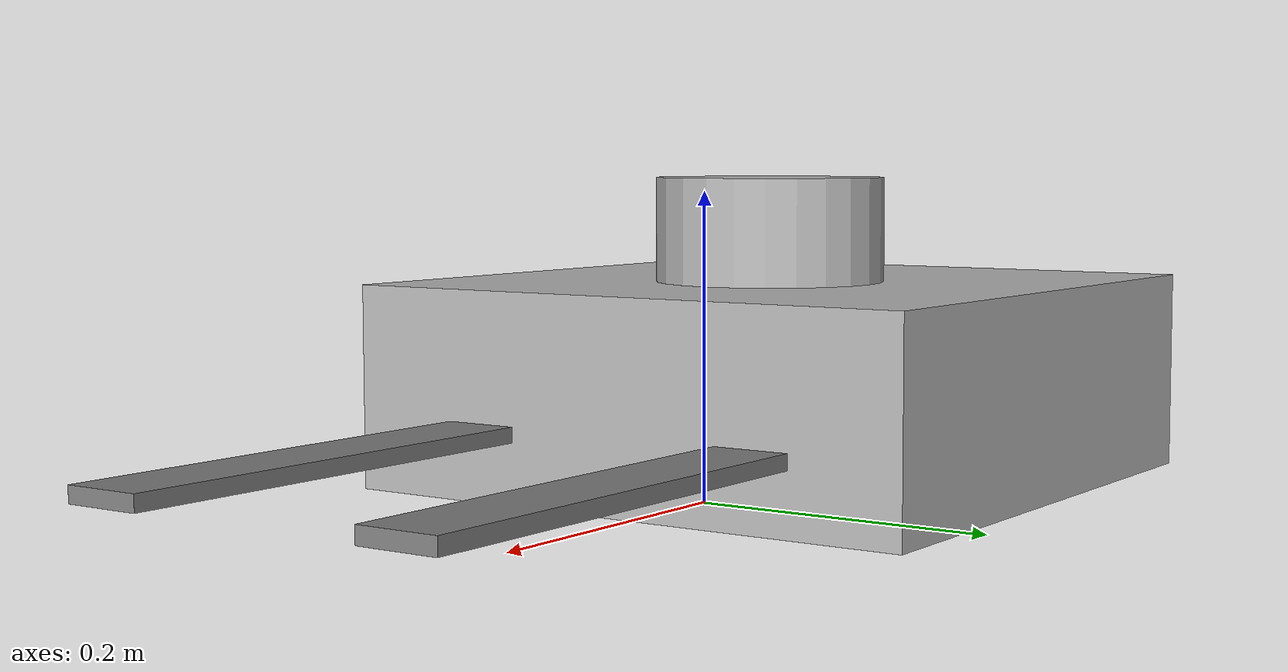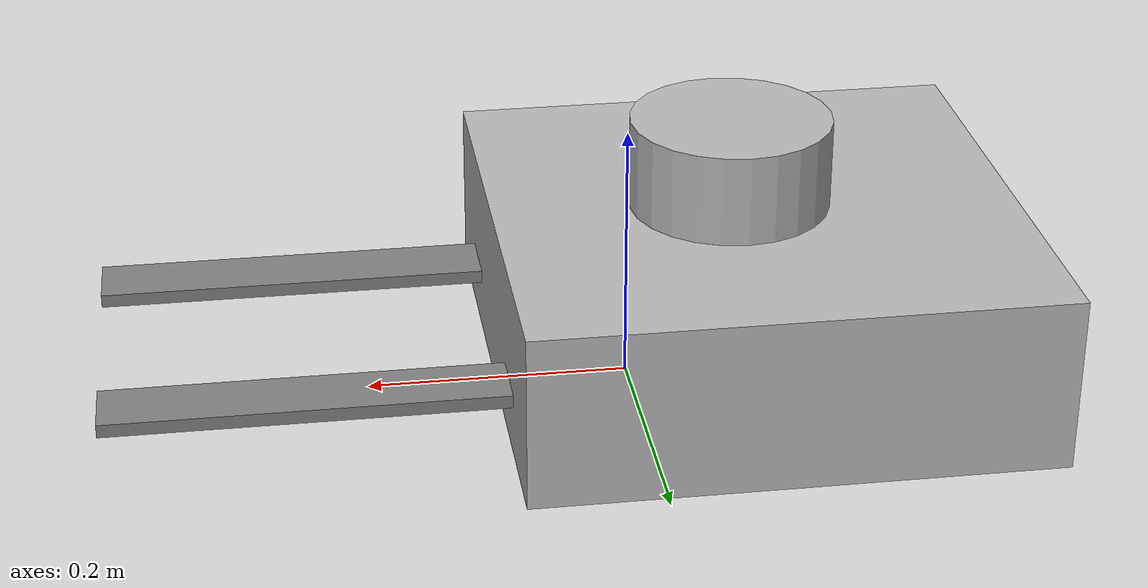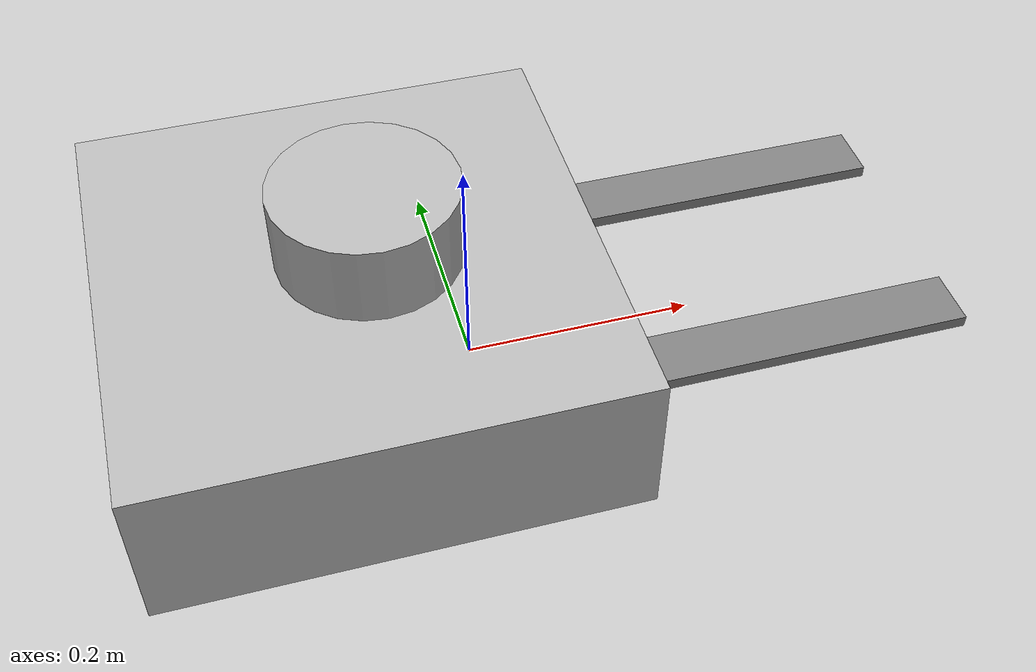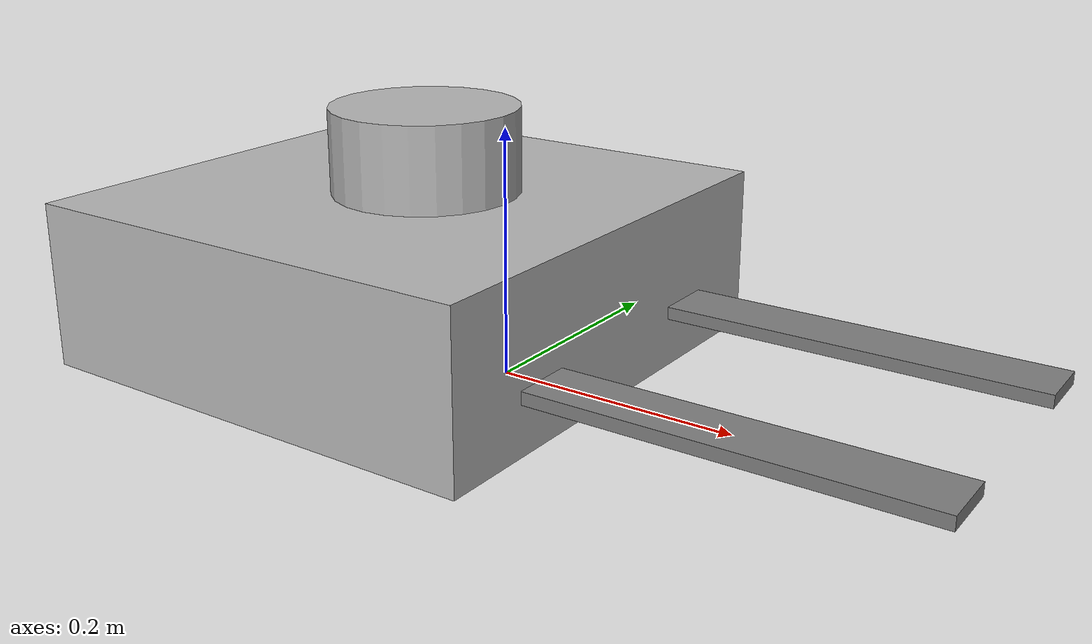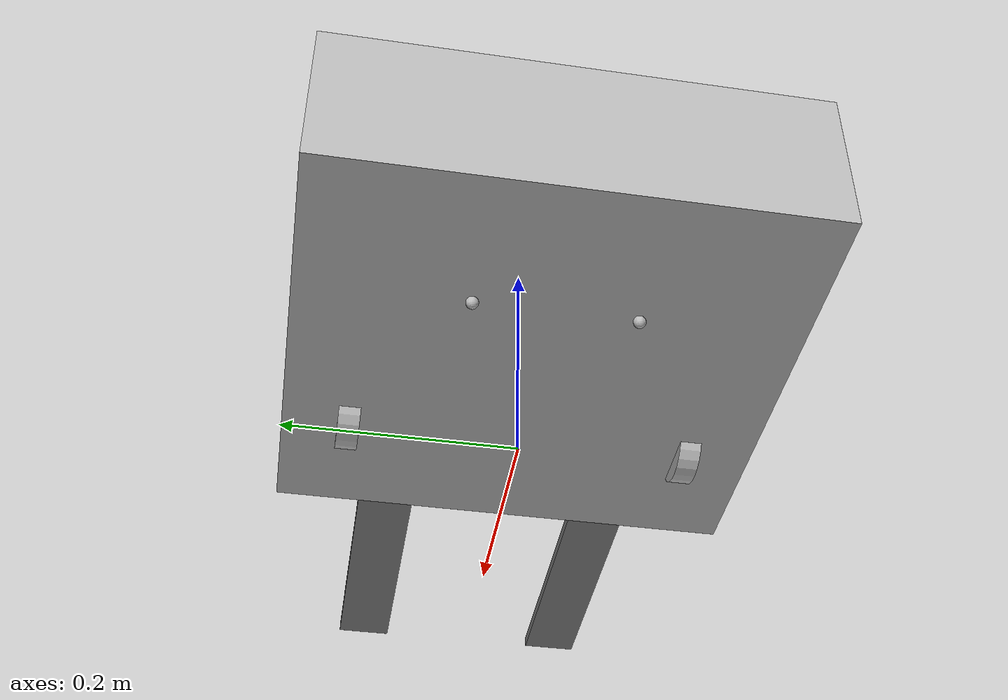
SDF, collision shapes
<?xml version="1.0" ?>
<sdf version="1.6">
  <model name="turtlebot3_waffle">
  <pose>0.0 0.0 0.0 0.0 0.0 0.0</pose>

    <link name="base_footprint"/>

    <link name="base_link">

      <inertial>
        <pose>-0.096 0 0.072 0 0 0</pose> <!-- Scaled by 1.5 -->
        <inertia>
          <ixx>9.4740756e-02</ixx> <!-- Scaled by 1.5^5 -->
          <ixy>0</ixy>
          <ixz>0</ixz>
          <iyy>9.4740756e-02</iyy> <!-- Scaled by 1.5^5 -->
          <iyz>0</iyz>
          <izz>2.5358550e-01</izz> <!-- Scaled by 1.5^5 -->
        </inertia>
        <mass>4.6338414e+00</mass> <!-- Scaled by 1.5^3 -->
      </inertial>

      <collision name="base_collision">
        <pose>-0.096 0 0.072 0 0 0</pose> <!-- Scaled by 1.5 -->
        <geometry>
          <box>
            <size>0.398 0.398 0.134</size> <!-- Scaled by 1.5 -->
          </box>
        </geometry>
      </collision>

      <visual name="base_visual">
        <pose>-0.096 0 0 0 0 0</pose> <!-- Scaled by 1.5 -->
        <geometry>
          <mesh>
            <uri>model://turtlebot3_common/meshes/waffle_base.dae</uri>
            <scale>0.0035 0.0035 0.0035</scale> <!-- Scaled by 1.5 -->
          </mesh>
        </geometry>
      </visual>
    </link>

    <link name="imu_link">
      <sensor name="tb3_imu" type="imu">
        <always_on>true</always_on>
        <update_rate>200</update_rate>
        <imu>
          <angular_velocity>
            <x>
              <noise type="gaussian">
                <mean>0.0</mean>
                <stddev>3e-4</stddev> <!-- Adjusted noise -->
              </noise>
            </x>
            <y>
              <noise type="gaussian">
                <mean>0.0</mean>
                <stddev>3e-4</stddev> <!-- Adjusted noise -->
              </noise>
            </y>
            <z>
              <noise type="gaussian">
                <mean>0.0</mean>
                <stddev>3e-4</stddev> <!-- Adjusted noise -->
              </noise>
            </z>
          </angular_velocity>
          <linear_acceleration>
            <x>
              <noise type="gaussian">
                <mean>0.0</mean>
                <stddev>2.55e-2</stddev> <!-- Adjusted noise -->
              </noise>
            </x>
            <y>
              <noise type="gaussian">
                <mean>0.0</mean>
                <stddev>2.55e-2</stddev> <!-- Adjusted noise -->
              </noise>
            </y>
            <z>
              <noise type="gaussian">
                <mean>0.0</mean>
                <stddev>2.55e-2</stddev> <!-- Adjusted noise -->
              </noise>
            </z>
          </linear_acceleration>
        </imu>
        <plugin name="turtlebot3_imu" filename="libgazebo_ros_imu_sensor.so">
          <ros>
            <remapping>~/out:=imu</remapping>
          </ros>
        </plugin>
      </sensor>
    </link>

    <link name="base_scan">
      <inertial>
        <pose>-0.078 0 0.167 0 0 0</pose> <!-- Scaled by 1.5 -->
        <inertia>
          <ixx>0.003375</ixx> <!-- Scaled by 1.5^5 -->
          <ixy>0.000</ixy>
          <ixz>0.000</ixz>
          <iyy>0.003375</iyy> <!-- Scaled by 1.5^5 -->
          <iyz>0.000</iyz>
          <izz>0.003375</izz> <!-- Scaled by 1.5^5 -->
        </inertia>
        <mass>0.385</mass> <!-- Scaled by 1.5^3 -->
      </inertial>

      <collision name="lidar_sensor_collision">
        <pose>-0.078 0 0.167 0 0 0</pose> <!-- Scaled by 1.5 -->
        <geometry>
          <cylinder>
            <radius>0.0762</radius> <!-- Scaled by 1.5 -->
            <length>0.0825</length> <!-- Scaled by 1.5 -->
          </cylinder>
        </geometry>
      </collision>

      <visual name="lidar_sensor_visual">
        <pose>-0.096 0 0.5 0 0 0</pose> <!-- Scaled by 1.5 -->
        <geometry>
          <mesh>
            <uri>model://turtlebot3_common/meshes/lds.dae</uri>
            <scale>0.0015 0.0015 0.0015</scale> <!-- Scaled by 1.5 -->
          </mesh>
        </geometry>
      </visual>

      <sensor name="hls_lfcd_lds" type="ray">
        <always_on>true</always_on>
        <visualize>false</visualize>
        <pose>-0.096 0 0.182 0 0 0</pose> <!-- Scaled by 1.5 -->
        <update_rate>5</update_rate>
        <ray>
          <scan>
            <horizontal>
              <samples>360</samples>
              <resolution>1.000000</resolution>
              <min_angle>0.000000</min_angle>
              <max_angle>6.280000</max_angle>
            </horizontal>
          </scan>
          <range>
            <min>0.180000</min> <!-- Scaled by 1.5 -->
            <max>5.25</max> <!-- Scaled by 1.5 -->
            <resolution>0.022500</resolution> <!-- Scaled by 1.5 -->
          </range>
          <noise>
            <type>gaussian</type>
            <mean>0.0</mean>
            <stddev>0.015</stddev> <!-- Adjusted noise -->
          </noise>
        </ray>
        <plugin name="turtlebot3_laserscan" filename="libgazebo_ros_ray_sensor.so">
          <ros>
            <remapping>~/out:=scan</remapping>
          </ros>
          <output_type>sensor_msgs/LaserScan</output_type>
          <frame_name>base_scan</frame_name>
        </plugin>
      </sensor>
    </link>

    <link name="wheel_left_link">

      <inertial>
        <pose>0.0 0.144 0.023 -1.57 0 0</pose>
        <inertia>
          <ixx>1.1175580e-05</ixx>
          <ixy>-4.2369783e-11</ixy>
          <ixz>-5.9381719e-09</ixz>
          <iyy>1.1192413e-05</iyy>
          <iyz>-1.4400107e-11</iyz>
          <izz>2.0712558e-05</izz>
        </inertia>
        <mass>0.1</mass>
      </inertial>

      <collision name="wheel_left_collision">
        <pose>0.0 0.144 0.023 -1.57 0 0</pose>
        <geometry>
          <cylinder>
            <radius>0.033</radius>
            <length>0.018</length>
          </cylinder>
        </geometry>
        <surface>
          <!-- This friction pamareter don't contain reliable data!! -->
          <friction>
            <ode>
              <mu>100000.0</mu>
              <mu2>100000.0</mu2>
              <fdir1>0 0 0</fdir1>
              <slip1>0.0</slip1>
              <slip2>0.0</slip2>
            </ode>
          </friction>
          <contact>
            <ode>
              <soft_cfm>0</soft_cfm>
              <soft_erp>0.2</soft_erp>
              <kp>1e+5</kp>
              <kd>1</kd>
              <max_vel>0.01</max_vel>
              <min_depth>0.001</min_depth>
            </ode>
          </contact>
        </surface>
      </collision>

      <visual name="wheel_left_visual">
        <pose>0.0 0.144 0.023 0 0 0</pose>
        <geometry>
          <mesh>
            <uri>model://turtlebot3_common/meshes/tire.dae</uri>
            <scale>0.001 0.001 0.001</scale>
          </mesh>
        </geometry>
      </visual>
    </link>

    <link name="wheel_right_link">

      <inertial>
        <pose>0.0 -0.144 0.023 -1.57 0 0</pose>
        <inertia>
          <ixx>1.1175580e-05</ixx>
          <ixy>-4.2369783e-11</ixy>
          <ixz>-5.9381719e-09</ixz>
          <iyy>1.1192413e-05</iyy>
          <iyz>-1.4400107e-11</iyz>
          <izz>2.0712558e-05</izz>
        </inertia>
        <mass>0.1</mass>
      </inertial>

      <collision name="wheel_right_collision">
        <pose>0.0 -0.144 0.023 -1.57 0 0</pose>
        <geometry>
          <cylinder>
            <radius>0.033</radius>
            <length>0.018</length>
          </cylinder>
        </geometry>
        <surface>
          <!-- This friction pamareter don't contain reliable data!! -->
          <friction>
            <ode>
              <mu>100000.0</mu>
              <mu2>100000.0</mu2>
              <fdir1>0 0 0</fdir1>
              <slip1>0.0</slip1>
              <slip2>0.0</slip2>
            </ode>
          </friction>
          <contact>
            <ode>
              <soft_cfm>0</soft_cfm>
              <soft_erp>0.2</soft_erp>
              <kp>1e+5</kp>
              <kd>1</kd>
              <max_vel>0.01</max_vel>
              <min_depth>0.001</min_depth>
            </ode>
          </contact>
        </surface>
      </collision>

      <visual name="wheel_right_visual">
        <pose>0.0 -0.144 0.023 0 0 0</pose>
        <geometry>
          <mesh>
            <uri>model://turtlebot3_common/meshes/tire.dae</uri>
            <scale>0.001 0.001 0.001</scale>
          </mesh>
        </geometry>
      </visual>
    </link>

    <link name='caster_back_right_link'>
      <pose>-0.177 -0.064 -0.004 -1.57 0 0</pose>
      <inertial>
        <mass>0.001</mass>
        <inertia>
          <ixx>0.00001</ixx>
          <ixy>0.000</ixy>
          <ixz>0.000</ixz>
          <iyy>0.00001</iyy>
          <iyz>0.000</iyz>
          <izz>0.00001</izz>
        </inertia>
      </inertial>
      <collision name='collision'>
        <geometry>
          <sphere>
            <radius>0.005000</radius>
          </sphere>
        </geometry>
        <surface>
          <contact>
            <ode>
              <soft_cfm>0</soft_cfm>
              <soft_erp>0.2</soft_erp>
              <kp>1e+5</kp>
              <kd>1</kd>
              <max_vel>0.01</max_vel>
              <min_depth>0.001</min_depth>
            </ode>
          </contact>
        </surface>
      </collision>
    </link>

    <link name='caster_back_left_link'>
      <pose>-0.177 0.064 -0.004 -1.57 0 0</pose>
      <inertial>
        <mass>0.001</mass>
        <inertia>
          <ixx>0.00001</ixx>
          <ixy>0.000</ixy>
          <ixz>0.000</ixz>
          <iyy>0.00001</iyy>
          <iyz>0.000</iyz>
          <izz>0.00001</izz>
        </inertia>
      </inertial>
      <collision name='collision'>
        <geometry>
          <sphere>
            <radius>0.005000</radius>
          </sphere>
        </geometry>
        <surface>
          <contact>
            <ode>
              <soft_cfm>0</soft_cfm>
              <soft_erp>0.2</soft_erp>
              <kp>1e+5</kp>
              <kd>1</kd>
              <max_vel>0.01</max_vel>
              <min_depth>0.001</min_depth>
            </ode>
          </contact>
        </surface>
      </collision>
    </link>

    <link name="camera_link"/>

    <link name="camera_rgb_frame">
      <inertial>
        <pose>0.069 -0.047 0.107 0 0 0</pose>
        <inertia>
          <ixx>0.001</ixx>
          <ixy>0.000</ixy>
          <ixz>0.000</ixz>
          <iyy>0.001</iyy>
          <iyz>0.000</iyz>
          <izz>0.001</izz>
        </inertia>
        <mass>0.035</mass>
      </inertial>

      <pose>0.069 -0.047 0.107 0 0 0</pose>
      <sensor name="camera" type="depth">
       <pose> 0 0 0 0 0 0 </pose>
        <always_on>true</always_on>
        <visualize>true</visualize>
        <update_rate>1</update_rate>
        <camera name="intel_realsense_r200">
           <horizontal_fov>1.02974</horizontal_fov>
          <image>
            <width>640</width>
            <height>480</height>
            <format>B8G8R8</format>
          </image>
          <clip>
               <near>0.05</near>
               <far>8.0</far>
          </clip>
          <noise>
            <type>gaussian</type>

            <mean>0.0</mean>
            <stddev>0.007</stddev>
          </noise>
        </camera>
          <plugin name="camera_driver" filename="libgazebo_ros_camera.so">
            <ros>
            </ros>
          <frame_name>camera_rgb_frame</frame_name>
          <min_depth>0.1</min_depth>
          <max_depth>100</max_depth>

          </plugin>
      </sensor>
    </link>

    <joint name="base_joint" type="fixed">
      <parent>base_footprint</parent>
      <child>base_link</child>
    </joint>

    <joint name="wheel_left_joint" type="revolute">
      <parent>base_link</parent>
      <child>wheel_left_link</child>
      <pose>0.0 0.144 0.023 -1.57 0 0</pose>
      <axis>
        <xyz>0 0 1</xyz>
      </axis>
    </joint>

    <joint name="wheel_right_joint" type="revolute">
      <parent>base_link</parent>
      <child>wheel_right_link</child>
      <pose>0.0 -0.144 0.023 -1.57 0 0</pose>
      <axis>
        <xyz>0 0 1</xyz>
      </axis>
    </joint>

    <joint name='caster_back_right_joint' type='ball'>
      <parent>base_link</parent>
      <child>caster_back_right_link</child>
    </joint>

    <joint name='caster_back_left_joint' type='ball'>
      <parent>base_link</parent>
      <child>caster_back_left_link</child>
    </joint>

    <joint name="imu_joint" type="fixed">
      <parent>base_link</parent>
      <child>imu_link</child>
      <pose>-0.032 0 0.068 0 0 0</pose>
      <axis>
        <xyz>0 0 1</xyz>
      </axis>
    </joint>

    <joint name="lidar_joint" type="fixed">
      <parent>base_link</parent>
      <child>base_scan</child>
      <pose>-0.096 0 0.182 0 0 0</pose> <!-- Scaled by 1.5 -->
      <axis>
        <xyz>0 0 1</xyz>
      </axis>
    </joint>

    <joint name="camera_joint" type="fixed">
      <parent>base_link</parent>
      <child>camera_link</child>
      <pose>0.064 -0.065 0.094 0 0 0</pose>
      <axis>
        <xyz>0 0 1</xyz>
      </axis>
    </joint>

    <joint name="camera_rgb_joint" type="fixed">
      <parent>camera_link</parent>
      <child>camera_rgb_frame</child>
      <pose>0.005 0.018 0.013 1 0 0</pose>
      <axis>
        <xyz>0 0 1</xyz>
      </axis>
    </joint>

    <plugin name="turtlebot3_diff_drive" filename="libgazebo_ros_diff_drive.so">

      <ros>
        <remapping>/tf:=tf</remapping>
      </ros>

      <update_rate>30</update_rate>
      <left_joint>wheel_left_joint</left_joint>
      <right_joint>wheel_right_joint</right_joint>

      <wheel_separation>0.287</wheel_separation>
      <wheel_diameter>0.066</wheel_diameter>

      <max_wheel_torque>20</max_wheel_torque>
      <max_wheel_acceleration>1.0</max_wheel_acceleration>

      <command_topic>cmd_vel</command_topic>

      <publish_odom>true</publish_odom>
      <publish_odom_tf>true</publish_odom_tf>
      <publish_wheel_tf>false</publish_wheel_tf>

      <odometry_topic>odom</odometry_topic>
      <odometry_frame>odom</odometry_frame>
      <robot_base_frame>base_footprint</robot_base_frame>

    </plugin>

    <plugin name="turtlebot3_joint_state" filename="libgazebo_ros_joint_state_publisher.so">
      <ros>
        <remapping>~/out:=joint_states</remapping>
      </ros>
      <update_rate>30</update_rate>
      <joint_name>wheel_left_joint</joint_name>
      <joint_name>wheel_right_joint</joint_name>
    </plugin>

      <!-- Left Fork -->
    <link name="fork_left_link">
      <inertial>
        <pose>0.2 0.1 0.05 0 0 0</pose>
        <mass>0.5</mass>
        <inertia>
          <ixx>0.001</ixx>
          <ixy>0</ixy>
          <ixz>0</ixz>
          <iyy>0.001</iyy>
          <iyz>0</iyz>
          <izz>0.001</izz>
        </inertia>
      </inertial>
      <collision name="fork_left_collision">
        <pose>0.2 0.1 0.05 0 0 0</pose>
        <geometry>
          <box>
            <size>0.4 0.05 0.01</size>
          </box>
        </geometry>
      </collision>
      <visual name="fork_left_visual">
        <pose>0.2 0.25 0.05 0 0 0</pose>
        <geometry>
          <box>
            <size>1.5 0.15 0.05</size>
          </box>
        </geometry>
        <material>
            <ambient>0.5 0.5 0.5 1</ambient>
            <diffuse>0.5 0.5 0.5 1</diffuse>
            <specular>0.5 0.5 0.5 1</specular>

        </material>
      </visual>
    </link>

    <!-- Right Fork -->
    <link name="fork_right_link">
      <inertial>
        <pose>0.2 -0.1 0.05 0 0 0</pose>
        <mass>0.5</mass>
        <inertia>
          <ixx>0.001</ixx>
          <ixy>0</ixy>
          <ixz>0</ixz>
          <iyy>0.001</iyy>
          <iyz>0</iyz>
          <izz>0.001</izz>
        </inertia>
      </inertial>
      <collision name="fork_right_collision">
        <pose>0.2 -0.1 0.05 0 0 0</pose>
        <geometry>
          <box>
            <size>0.4 0.05 0.01</size>
          </box>
        </geometry>
      </collision>
      <visual name="fork_right_visual">
        <pose>0.2 -0.25 0.05 0 0 0</pose>
        <geometry>
          <box>
            <size>1.5 0.15 0.05</size>
          </box>
        </geometry>
        <material>
            <ambient>0.5 0.5 0.5 1</ambient>
            <diffuse>0.5 0.5 0.5 1</diffuse>
            <specular>0.5 0.5 0.5 1</specular>
        </material>
      </visual>
    </link>

    <!-- Left Fork Joint -->
    <joint name="fork_left_joint" type="prismatic">
      <parent>base_link</parent>
      <child>fork_left_link</child>
      <pose>0 0 0 0 0 0</pose>
      <axis>
        <xyz>0 0 1</xyz>
        <limit>
          <lower>0</lower>
          <upper>0.3</upper>
          <effort>100</effort>
          <velocity>0.1</velocity>
        </limit>
        <dynamics>
          <damping>50</damping>
          <friction>1</friction>
        </dynamics>
      </axis>
    </joint>

    <!-- Right Fork Joint -->
    <joint name="fork_right_joint" type="prismatic">
      <parent>base_link</parent>
      <child>fork_right_link</child>
      <pose>0 0 0 0 0 0</pose>
      <axis>
        <xyz>0 0 1</xyz>
        <limit>
          <lower>0</lower>
          <upper>0.3</upper>
          <effort>100</effort>
          <velocity>0.1</velocity>
        </limit>
        <dynamics>
          <damping>50</damping>
          <friction>1</friction>
        </dynamics>
      </axis>
    </joint>

  </model>
</sdf>
